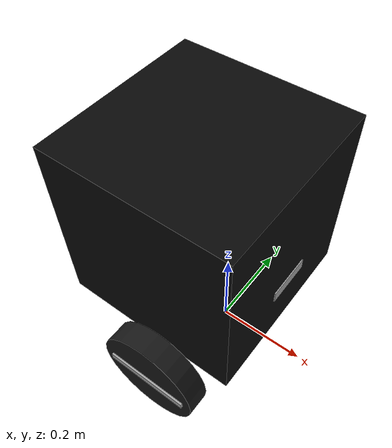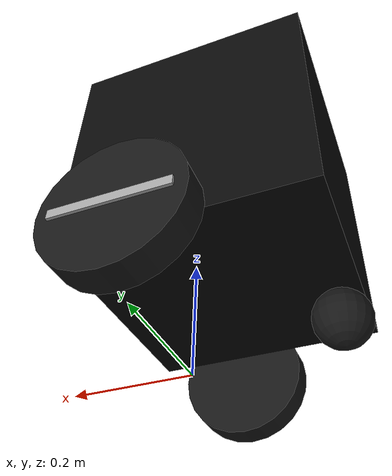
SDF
<?xml version="1.0"?>
<sdf version="1.9">
  <model name="aisle_robot">
    <static>false</static>
    <self_collide>false</self_collide>
    <allow_auto_disable>false</allow_auto_disable>
    <!-- Model origin is at the drive axle projected onto the floor. Local +X is forward. -->
    <link name="chassis">
      <pose>-0.06 0 0.33 0 0 0</pose>
      <inertial>
        <!-- Concentrate battery mass low and slightly rearward for faster braking. -->
        <pose>-0.03 0 -0.12 0 0 0</pose>
        <mass>7</mass>
        <inertia><ixx>0.1866666667</ixx><iyy>0.1866666667</iyy><izz>0.1866666667</izz></inertia>
      </inertial>
      <visual name="black_cube">
        <geometry><box><size>0.40 0.40 0.40</size></box></geometry>
        <material><ambient>0.025 0.025 0.025 1</ambient><diffuse>0.035 0.035 0.035 1</diffuse><specular>0.1 0.1 0.1 1</specular></material>
      </visual>
      <collision name="cube_collision">
        <geometry><box><size>0.40 0.40 0.40</size></box></geometry>
      </collision>
      <visual name="front_marker">
        <pose>0.201 0 -0.07 0 0 0</pose>
        <geometry><box><size>0.003 0.10 0.025</size></box></geometry>
        <material><ambient>0.6 0.6 0.6 1</ambient><diffuse>0.6 0.6 0.6 1</diffuse></material>
      </visual>
    </link>
    <link name="left_wheel">
      <pose>0 0.25 0.11 0 0 0</pose>
      <inertial>
        <mass>0.25</mass>
        <inertia><ixx>0.000808333333</ixx><iyy>0.0015125</iyy><izz>0.000808333333</izz></inertia>
      </inertial>
      <visual name="tire">
        <pose>0 0 0 1.57079632679 0 0</pose>
        <geometry><cylinder><radius>0.11</radius><length>0.05</length></cylinder></geometry>
        <material><ambient>0.09 0.09 0.09 1</ambient><diffuse>0.09 0.09 0.09 1</diffuse></material>
      </visual>
      <visual name="rotation_spoke">
        <pose>0 0.027 0 0 0 0</pose>
        <geometry><box><size>0.18 0.005 0.015</size></box></geometry>
        <material><ambient>0.65 0.65 0.65 1</ambient><diffuse>0.65 0.65 0.65 1</diffuse></material>
      </visual>
      <collision name="tire_contact">
        <pose>0 0 0 1.57079632679 0 0</pose>
        <geometry><cylinder><radius>0.11</radius><length>0.05</length></cylinder></geometry>
        <surface><friction><ode><mu>1.0</mu><mu2>1.0</mu2></ode></friction></surface>
      </collision>
    </link>
    <link name="right_wheel">
      <pose>0 -0.25 0.11 0 0 0</pose>
      <inertial>
        <mass>0.25</mass>
        <inertia><ixx>0.000808333333</ixx><iyy>0.0015125</iyy><izz>0.000808333333</izz></inertia>
      </inertial>
      <visual name="tire">
        <pose>0 0 0 1.57079632679 0 0</pose>
        <geometry><cylinder><radius>0.11</radius><length>0.05</length></cylinder></geometry>
        <material><ambient>0.09 0.09 0.09 1</ambient><diffuse>0.09 0.09 0.09 1</diffuse></material>
      </visual>
      <visual name="rotation_spoke">
        <pose>0 -0.027 0 0 0 0</pose>
        <geometry><box><size>0.18 0.005 0.015</size></box></geometry>
        <material><ambient>0.65 0.65 0.65 1</ambient><diffuse>0.65 0.65 0.65 1</diffuse></material>
      </visual>
      <collision name="tire_contact">
        <pose>0 0 0 1.57079632679 0 0</pose>
        <geometry><cylinder><radius>0.11</radius><length>0.05</length></cylinder></geometry>
        <surface><friction><ode><mu>1.0</mu><mu2>1.0</mu2></ode></friction></surface>
      </collision>
    </link>
    <link name="support_ball">
      <pose>-0.23 0 0.045 0 0 0</pose>
      <inertial>
        <mass>0.05</mass>
        <inertia><ixx>0.0000405</ixx><iyy>0.0000405</iyy><izz>0.0000405</izz></inertia>
      </inertial>
      <visual name="ball_visual">
        <geometry><sphere><radius>0.045</radius></sphere></geometry>
        <material><ambient>0.09 0.09 0.09 1</ambient><diffuse>0.09 0.09 0.09 1</diffuse></material>
      </visual>
      <collision name="ball_contact">
        <geometry><sphere><radius>0.045</radius></sphere></geometry>
        <surface><friction><ode><mu>0.01</mu><mu2>0.01</mu2></ode></friction></surface>
      </collision>
    </link>
    <joint name="left_wheel_joint" type="revolute">
      <pose relative_to="left_wheel">0 0 0 0 0 0</pose>
      <parent>chassis</parent><child>left_wheel</child>
      <axis><xyz expressed_in="__model__">0 1 0</xyz>
        <limit><lower>-1.79769e+308</lower><upper>1.79769e+308</upper><effort>10</effort><velocity>220</velocity></limit>
        <dynamics><damping>0.001</damping></dynamics>
      </axis>
    </joint>
    <joint name="right_wheel_joint" type="revolute">
      <pose relative_to="right_wheel">0 0 0 0 0 0</pose>
      <parent>chassis</parent><child>right_wheel</child>
      <axis><xyz expressed_in="__model__">0 1 0</xyz>
        <limit><lower>-1.79769e+308</lower><upper>1.79769e+308</upper><effort>10</effort><velocity>220</velocity></limit>
        <dynamics><damping>0.001</damping></dynamics>
      </axis>
    </joint>
    <joint name="support_ball_joint" type="ball">
      <pose relative_to="support_ball">0 0 0 0 0 0</pose>
      <parent>chassis</parent><child>support_ball</child>
    </joint>
    <plugin filename="gz-sim-diff-drive-system" name="gz::sim::systems::DiffDrive">
      <left_joint>left_wheel_joint</left_joint><right_joint>right_wheel_joint</right_joint>
      <wheel_separation>0.50</wheel_separation><wheel_radius>0.11</wheel_radius>
      <max_linear_velocity>20</max_linear_velocity>
      <min_linear_acceleration>-3</min_linear_acceleration>
      <max_linear_acceleration>3</max_linear_acceleration>
      <topic>/step1/cmd_vel</topic><odom_topic>/step1/wheel_odometry</odom_topic>
      <odom_publish_frequency>100</odom_publish_frequency>
      <frame_id>aisle_robot/odom</frame_id><child_frame_id>aisle_robot/chassis</child_frame_id>
    </plugin>
    <plugin filename="gz-sim-pose-publisher-system" name="gz::sim::systems::PosePublisher">
      <publish_link_pose>false</publish_link_pose><publish_visual_pose>false</publish_visual_pose>
      <publish_collision_pose>false</publish_collision_pose><publish_sensor_pose>false</publish_sensor_pose>
      <publish_model_pose>true</publish_model_pose><publish_nested_model_pose>true</publish_nested_model_pose>
      <static_publisher>false</static_publisher>
      <use_pose_vector_msg>true</use_pose_vector_msg><update_frequency>100</update_frequency>
    </plugin>
  </model>
</sdf>
